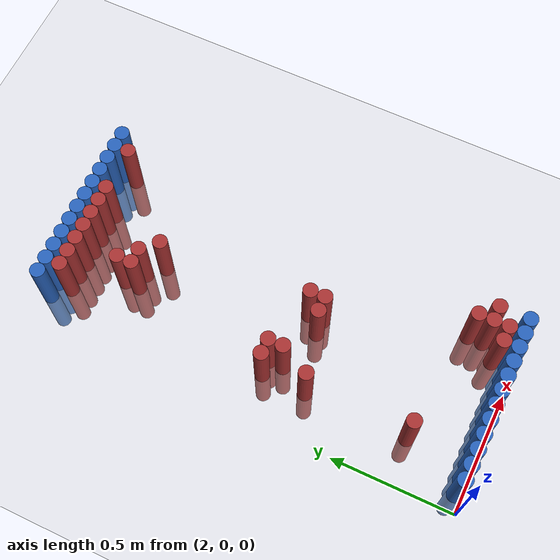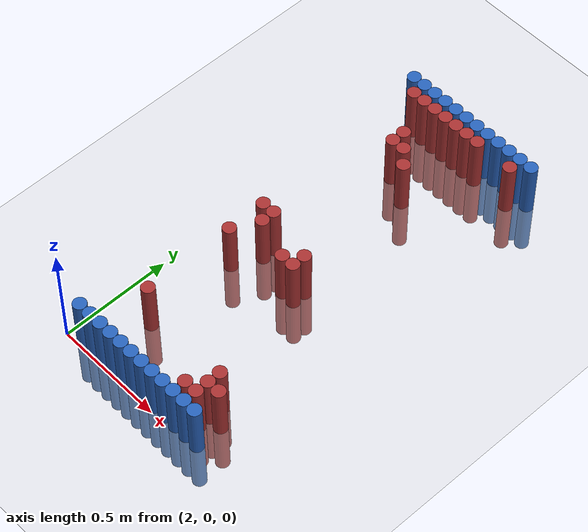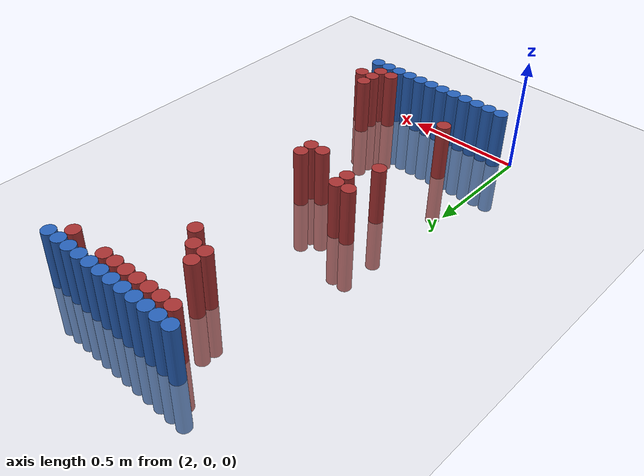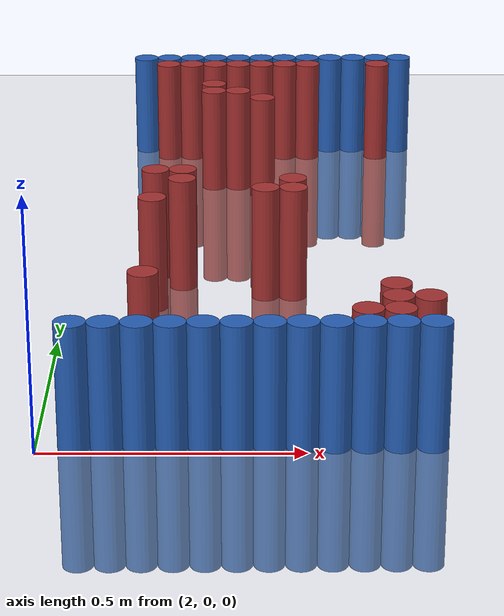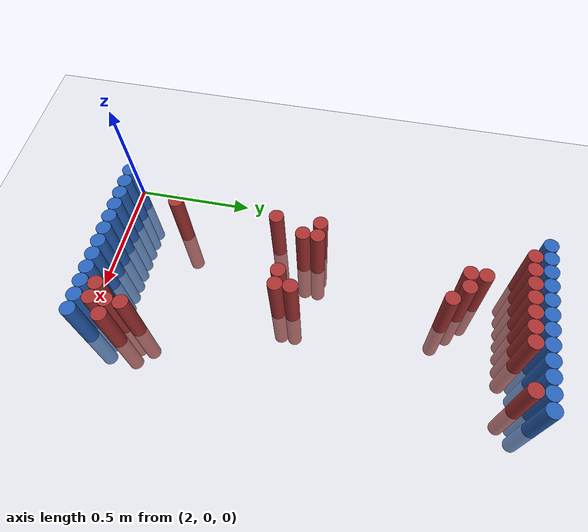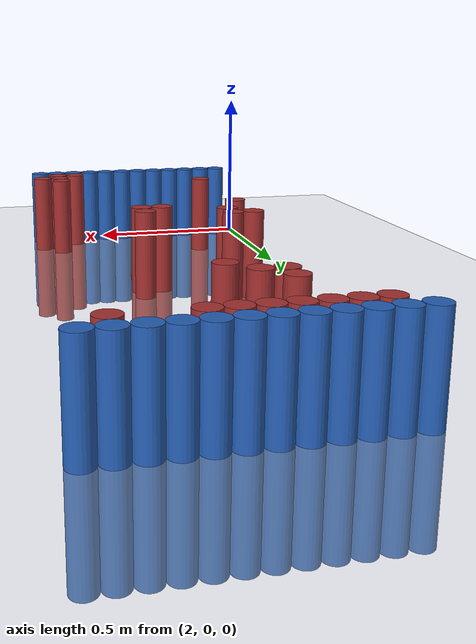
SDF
<sdf version="1.6">
 <world name="default">
  <model name="ground_plane">
   <static>1</static>
   <link name="link">
    <collision name="collision">
     <geometry><plane><normal>0 0 1</normal><size>100 100</size></plane></geometry>
     <surface><friction><ode><mu>100</mu><mu2>50</mu2></ode></friction></surface>
    </collision>
    <visual name="visual">
     <cast_shadows>0</cast_shadows>
     <geometry><plane><normal>0 0 1</normal><size>100 100</size></plane></geometry>
     <material>
      <script><uri>file://media/materials/scripts/gazebo.material</uri><name>Gazebo/Grey</name></script>
     </material>
    </visual>
   </link>
  </model>
  <model name="unit_cylinder_96">
   <static>1</static>
   <pose>2.130000 1.770000 0.000000 0.000000 0.000000 0.000000</pose>
   <link name="link">
    <inertial>
     <mass>1</mass>
     <inertia><ixx>0.145833</ixx><ixy>0</ixy><ixz>0</ixz><iyy>0.145833</iyy><iyz>0</iyz><izz>0.125</izz></inertia>
    </inertial>
    <collision name="collision">
     <geometry><cylinder><radius>0.030000</radius><length>0.5</length></cylinder></geometry>
    </collision>
    <visual name="visual">
     <geometry><cylinder><radius>0.030000</radius><length>0.5</length></cylinder></geometry>
     <material>
      <ambient>0.152000 0.379000 0.720000 1</ambient>
      <diffuse>0.152000 0.379000 0.720000 1</diffuse>
     </material>
     <material>
      <script><name>Gazebo/Grey</name><uri>file://media/materials/scripts/gazebo.material</uri></script>
     </material>
    </visual>
   </link>
  </model>
  <model name="unit_cylinder_97">
   <static>1</static>
   <pose>2.190000 1.770000 0.000000 0.000000 0.000000 0.000000</pose>
   <link name="link">
    <inertial>
     <mass>1</mass>
     <inertia><ixx>0.145833</ixx><ixy>0</ixy><ixz>0</ixz><iyy>0.145833</iyy><iyz>0</iyz><izz>0.125</izz></inertia>
    </inertial>
    <collision name="collision">
     <geometry><cylinder><radius>0.030000</radius><length>0.5</length></cylinder></geometry>
    </collision>
    <visual name="visual">
     <geometry><cylinder><radius>0.030000</radius><length>0.5</length></cylinder></geometry>
     <material>
      <ambient>0.152000 0.379000 0.720000 1</ambient>
      <diffuse>0.152000 0.379000 0.720000 1</diffuse>
     </material>
     <material>
      <script><name>Gazebo/Grey</name><uri>file://media/materials/scripts/gazebo.material</uri></script>
     </material>
    </visual>
   </link>
  </model>
  <model name="unit_cylinder_98">
   <static>1</static>
   <pose>2.250000 1.770000 0.000000 0.000000 0.000000 0.000000</pose>
   <link name="link">
    <inertial>
     <mass>1</mass>
     <inertia><ixx>0.145833</ixx><ixy>0</ixy><ixz>0</ixz><iyy>0.145833</iyy><iyz>0</iyz><izz>0.125</izz></inertia>
    </inertial>
    <collision name="collision">
     <geometry><cylinder><radius>0.030000</radius><length>0.5</length></cylinder></geometry>
    </collision>
    <visual name="visual">
     <geometry><cylinder><radius>0.030000</radius><length>0.5</length></cylinder></geometry>
     <material>
      <ambient>0.152000 0.379000 0.720000 1</ambient>
      <diffuse>0.152000 0.379000 0.720000 1</diffuse>
     </material>
     <material>
      <script><name>Gazebo/Grey</name><uri>file://media/materials/scripts/gazebo.material</uri></script>
     </material>
    </visual>
   </link>
  </model>
  <model name="unit_cylinder_99">
   <static>1</static>
   <pose>2.310000 1.770000 0.000000 0.000000 0.000000 0.000000</pose>
   <link name="link">
    <inertial>
     <mass>1</mass>
     <inertia><ixx>0.145833</ixx><ixy>0</ixy><ixz>0</ixz><iyy>0.145833</iyy><iyz>0</iyz><izz>0.125</izz></inertia>
    </inertial>
    <collision name="collision">
     <geometry><cylinder><radius>0.030000</radius><length>0.5</length></cylinder></geometry>
    </collision>
    <visual name="visual">
     <geometry><cylinder><radius>0.030000</radius><length>0.5</length></cylinder></geometry>
     <material>
      <ambient>0.152000 0.379000 0.720000 1</ambient>
      <diffuse>0.152000 0.379000 0.720000 1</diffuse>
     </material>
     <material>
      <script><name>Gazebo/Grey</name><uri>file://media/materials/scripts/gazebo.material</uri></script>
     </material>
    </visual>
   </link>
  </model>
  <model name="unit_cylinder_100">
   <static>1</static>
   <pose>2.370000 1.770000 0.000000 0.000000 0.000000 0.000000</pose>
   <link name="link">
    <inertial>
     <mass>1</mass>
     <inertia><ixx>0.145833</ixx><ixy>0</ixy><ixz>0</ixz><iyy>0.145833</iyy><iyz>0</iyz><izz>0.125</izz></inertia>
    </inertial>
    <collision name="collision">
     <geometry><cylinder><radius>0.030000</radius><length>0.5</length></cylinder></geometry>
    </collision>
    <visual name="visual">
     <geometry><cylinder><radius>0.030000</radius><length>0.5</length></cylinder></geometry>
     <material>
      <ambient>0.152000 0.379000 0.720000 1</ambient>
      <diffuse>0.152000 0.379000 0.720000 1</diffuse>
     </material>
     <material>
      <script><name>Gazebo/Grey</name><uri>file://media/materials/scripts/gazebo.material</uri></script>
     </material>
    </visual>
   </link>
  </model>
  <model name="unit_cylinder_101">
   <static>1</static>
   <pose>2.430000 1.770000 0.000000 0.000000 0.000000 0.000000</pose>
   <link name="link">
    <inertial>
     <mass>1</mass>
     <inertia><ixx>0.145833</ixx><ixy>0</ixy><ixz>0</ixz><iyy>0.145833</iyy><iyz>0</iyz><izz>0.125</izz></inertia>
    </inertial>
    <collision name="collision">
     <geometry><cylinder><radius>0.030000</radius><length>0.5</length></cylinder></geometry>
    </collision>
    <visual name="visual">
     <geometry><cylinder><radius>0.030000</radius><length>0.5</length></cylinder></geometry>
     <material>
      <ambient>0.152000 0.379000 0.720000 1</ambient>
      <diffuse>0.152000 0.379000 0.720000 1</diffuse>
     </material>
     <material>
      <script><name>Gazebo/Grey</name><uri>file://media/materials/scripts/gazebo.material</uri></script>
     </material>
    </visual>
   </link>
  </model>
  <model name="unit_cylinder_102">
   <static>1</static>
   <pose>2.490000 1.770000 0.000000 0.000000 0.000000 0.000000</pose>
   <link name="link">
    <inertial>
     <mass>1</mass>
     <inertia><ixx>0.145833</ixx><ixy>0</ixy><ixz>0</ixz><iyy>0.145833</iyy><iyz>0</iyz><izz>0.125</izz></inertia>
    </inertial>
    <collision name="collision">
     <geometry><cylinder><radius>0.030000</radius><length>0.5</length></cylinder></geometry>
    </collision>
    <visual name="visual">
     <geometry><cylinder><radius>0.030000</radius><length>0.5</length></cylinder></geometry>
     <material>
      <ambient>0.152000 0.379000 0.720000 1</ambient>
      <diffuse>0.152000 0.379000 0.720000 1</diffuse>
     </material>
     <material>
      <script><name>Gazebo/Grey</name><uri>file://media/materials/scripts/gazebo.material</uri></script>
     </material>
    </visual>
   </link>
  </model>
  <model name="unit_cylinder_103">
   <static>1</static>
   <pose>2.550000 1.770000 0.000000 0.000000 0.000000 0.000000</pose>
   <link name="link">
    <inertial>
     <mass>1</mass>
     <inertia><ixx>0.145833</ixx><ixy>0</ixy><ixz>0</ixz><iyy>0.145833</iyy><iyz>0</iyz><izz>0.125</izz></inertia>
    </inertial>
    <collision name="collision">
     <geometry><cylinder><radius>0.030000</radius><length>0.5</length></cylinder></geometry>
    </collision>
    <visual name="visual">
     <geometry><cylinder><radius>0.030000</radius><length>0.5</length></cylinder></geometry>
     <material>
      <ambient>0.152000 0.379000 0.720000 1</ambient>
      <diffuse>0.152000 0.379000 0.720000 1</diffuse>
     </material>
     <material>
      <script><name>Gazebo/Grey</name><uri>file://media/materials/scripts/gazebo.material</uri></script>
     </material>
    </visual>
   </link>
  </model>
  <model name="unit_cylinder_104">
   <static>1</static>
   <pose>2.610000 1.770000 0.000000 0.000000 0.000000 0.000000</pose>
   <link name="link">
    <inertial>
     <mass>1</mass>
     <inertia><ixx>0.145833</ixx><ixy>0</ixy><ixz>0</ixz><iyy>0.145833</iyy><iyz>0</iyz><izz>0.125</izz></inertia>
    </inertial>
    <collision name="collision">
     <geometry><cylinder><radius>0.030000</radius><length>0.5</length></cylinder></geometry>
    </collision>
    <visual name="visual">
     <geometry><cylinder><radius>0.030000</radius><length>0.5</length></cylinder></geometry>
     <material>
      <ambient>0.152000 0.379000 0.720000 1</ambient>
      <diffuse>0.152000 0.379000 0.720000 1</diffuse>
     </material>
     <material>
      <script><name>Gazebo/Grey</name><uri>file://media/materials/scripts/gazebo.material</uri></script>
     </material>
    </visual>
   </link>
  </model>
  <model name="unit_cylinder_105">
   <static>1</static>
   <pose>2.670000 1.770000 0.000000 0.000000 0.000000 0.000000</pose>
   <link name="link">
    <inertial>
     <mass>1</mass>
     <inertia><ixx>0.145833</ixx><ixy>0</ixy><ixz>0</ixz><iyy>0.145833</iyy><iyz>0</iyz><izz>0.125</izz></inertia>
    </inertial>
    <collision name="collision">
     <geometry><cylinder><radius>0.030000</radius><length>0.5</length></cylinder></geometry>
    </collision>
    <visual name="visual">
     <geometry><cylinder><radius>0.030000</radius><length>0.5</length></cylinder></geometry>
     <material>
      <ambient>0.152000 0.379000 0.720000 1</ambient>
      <diffuse>0.152000 0.379000 0.720000 1</diffuse>
     </material>
     <material>
      <script><name>Gazebo/Grey</name><uri>file://media/materials/scripts/gazebo.material</uri></script>
     </material>
    </visual>
   </link>
  </model>
  <model name="unit_cylinder_106">
   <static>1</static>
   <pose>2.730000 1.770000 0.000000 0.000000 0.000000 0.000000</pose>
   <link name="link">
    <inertial>
     <mass>1</mass>
     <inertia><ixx>0.145833</ixx><ixy>0</ixy><ixz>0</ixz><iyy>0.145833</iyy><iyz>0</iyz><izz>0.125</izz></inertia>
    </inertial>
    <collision name="collision">
     <geometry><cylinder><radius>0.030000</radius><length>0.5</length></cylinder></geometry>
    </collision>
    <visual name="visual">
     <geometry><cylinder><radius>0.030000</radius><length>0.5</length></cylinder></geometry>
     <material>
      <ambient>0.152000 0.379000 0.720000 1</ambient>
      <diffuse>0.152000 0.379000 0.720000 1</diffuse>
     </material>
     <material>
      <script><name>Gazebo/Grey</name><uri>file://media/materials/scripts/gazebo.material</uri></script>
     </material>
    </visual>
   </link>
  </model>
  <model name="unit_cylinder_107">
   <static>1</static>
   <pose>2.790000 1.770000 0.000000 0.000000 0.000000 0.000000</pose>
   <link name="link">
    <inertial>
     <mass>1</mass>
     <inertia><ixx>0.145833</ixx><ixy>0</ixy><ixz>0</ixz><iyy>0.145833</iyy><iyz>0</iyz><izz>0.125</izz></inertia>
    </inertial>
    <collision name="collision">
     <geometry><cylinder><radius>0.030000</radius><length>0.5</length></cylinder></geometry>
    </collision>
    <visual name="visual">
     <geometry><cylinder><radius>0.030000</radius><length>0.5</length></cylinder></geometry>
     <material>
      <ambient>0.152000 0.379000 0.720000 1</ambient>
      <diffuse>0.152000 0.379000 0.720000 1</diffuse>
     </material>
     <material>
      <script><name>Gazebo/Grey</name><uri>file://media/materials/scripts/gazebo.material</uri></script>
     </material>
    </visual>
   </link>
  </model>
  <model name="unit_cylinder_125">
   <static>1</static>
   <pose>2.190000 1.710000 0.000000 0.000000 0.000000 0.000000</pose>
   <link name="link">
    <inertial>
     <mass>1</mass>
     <inertia><ixx>0.145833</ixx><ixy>0</ixy><ixz>0</ixz><iyy>0.145833</iyy><iyz>0</iyz><izz>0.125</izz></inertia>
    </inertial>
    <collision name="collision">
     <geometry><cylinder><radius>0.030000</radius><length>0.5</length></cylinder></geometry>
    </collision>
    <visual name="visual">
     <geometry><cylinder><radius>0.030000</radius><length>0.5</length></cylinder></geometry>
     <material>
      <ambient>0.648000 0.192000 0.192000 1</ambient>
      <diffuse>0.648000 0.192000 0.192000 1</diffuse>
     </material>
     <material>
      <script><name>Gazebo/Grey</name><uri>file://media/materials/scripts/gazebo.material</uri></script>
     </material>
    </visual>
   </link>
  </model>
  <model name="unit_cylinder_126">
   <static>1</static>
   <pose>2.250000 1.710000 0.000000 0.000000 0.000000 0.000000</pose>
   <link name="link">
    <inertial>
     <mass>1</mass>
     <inertia><ixx>0.145833</ixx><ixy>0</ixy><ixz>0</ixz><iyy>0.145833</iyy><iyz>0</iyz><izz>0.125</izz></inertia>
    </inertial>
    <collision name="collision">
     <geometry><cylinder><radius>0.030000</radius><length>0.5</length></cylinder></geometry>
    </collision>
    <visual name="visual">
     <geometry><cylinder><radius>0.030000</radius><length>0.5</length></cylinder></geometry>
     <material>
      <ambient>0.648000 0.192000 0.192000 1</ambient>
      <diffuse>0.648000 0.192000 0.192000 1</diffuse>
     </material>
     <material>
      <script><name>Gazebo/Grey</name><uri>file://media/materials/scripts/gazebo.material</uri></script>
     </material>
    </visual>
   </link>
  </model>
  <model name="unit_cylinder_127">
   <static>1</static>
   <pose>2.310000 1.710000 0.000000 0.000000 0.000000 0.000000</pose>
   <link name="link">
    <inertial>
     <mass>1</mass>
     <inertia><ixx>0.145833</ixx><ixy>0</ixy><ixz>0</ixz><iyy>0.145833</iyy><iyz>0</iyz><izz>0.125</izz></inertia>
    </inertial>
    <collision name="collision">
     <geometry><cylinder><radius>0.030000</radius><length>0.5</length></cylinder></geometry>
    </collision>
    <visual name="visual">
     <geometry><cylinder><radius>0.030000</radius><length>0.5</length></cylinder></geometry>
     <material>
      <ambient>0.648000 0.192000 0.192000 1</ambient>
      <diffuse>0.648000 0.192000 0.192000 1</diffuse>
     </material>
     <material>
      <script><name>Gazebo/Grey</name><uri>file://media/materials/scripts/gazebo.material</uri></script>
     </material>
    </visual>
   </link>
  </model>
  <model name="unit_cylinder_128">
   <static>1</static>
   <pose>2.370000 1.710000 0.000000 0.000000 0.000000 0.000000</pose>
   <link name="link">
    <inertial>
     <mass>1</mass>
     <inertia><ixx>0.145833</ixx><ixy>0</ixy><ixz>0</ixz><iyy>0.145833</iyy><iyz>0</iyz><izz>0.125</izz></inertia>
    </inertial>
    <collision name="collision">
     <geometry><cylinder><radius>0.030000</radius><length>0.5</length></cylinder></geometry>
    </collision>
    <visual name="visual">
     <geometry><cylinder><radius>0.030000</radius><length>0.5</length></cylinder></geometry>
     <material>
      <ambient>0.648000 0.192000 0.192000 1</ambient>
      <diffuse>0.648000 0.192000 0.192000 1</diffuse>
     </material>
     <material>
      <script><name>Gazebo/Grey</name><uri>file://media/materials/scripts/gazebo.material</uri></script>
     </material>
    </visual>
   </link>
  </model>
  <model name="unit_cylinder_129">
   <static>1</static>
   <pose>2.430000 1.710000 0.000000 0.000000 0.000000 0.000000</pose>
   <link name="link">
    <inertial>
     <mass>1</mass>
     <inertia><ixx>0.145833</ixx><ixy>0</ixy><ixz>0</ixz><iyy>0.145833</iyy><iyz>0</iyz><izz>0.125</izz></inertia>
    </inertial>
    <collision name="collision">
     <geometry><cylinder><radius>0.030000</radius><length>0.5</length></cylinder></geometry>
    </collision>
    <visual name="visual">
     <geometry><cylinder><radius>0.030000</radius><length>0.5</length></cylinder></geometry>
     <material>
      <ambient>0.648000 0.192000 0.192000 1</ambient>
      <diffuse>0.648000 0.192000 0.192000 1</diffuse>
     </material>
     <material>
      <script><name>Gazebo/Grey</name><uri>file://media/materials/scripts/gazebo.material</uri></script>
     </material>
    </visual>
   </link>
  </model>
  <model name="unit_cylinder_130">
   <static>1</static>
   <pose>2.490000 1.710000 0.000000 0.000000 0.000000 0.000000</pose>
   <link name="link">
    <inertial>
     <mass>1</mass>
     <inertia><ixx>0.145833</ixx><ixy>0</ixy><ixz>0</ixz><iyy>0.145833</iyy><iyz>0</iyz><izz>0.125</izz></inertia>
    </inertial>
    <collision name="collision">
     <geometry><cylinder><radius>0.030000</radius><length>0.5</length></cylinder></geometry>
    </collision>
    <visual name="visual">
     <geometry><cylinder><radius>0.030000</radius><length>0.5</length></cylinder></geometry>
     <material>
      <ambient>0.648000 0.192000 0.192000 1</ambient>
      <diffuse>0.648000 0.192000 0.192000 1</diffuse>
     </material>
     <material>
      <script><name>Gazebo/Grey</name><uri>file://media/materials/scripts/gazebo.material</uri></script>
     </material>
    </visual>
   </link>
  </model>
  <model name="unit_cylinder_131">
   <static>1</static>
   <pose>2.550000 1.710000 0.000000 0.000000 0.000000 0.000000</pose>
   <link name="link">
    <inertial>
     <mass>1</mass>
     <inertia><ixx>0.145833</ixx><ixy>0</ixy><ixz>0</ixz><iyy>0.145833</iyy><iyz>0</iyz><izz>0.125</izz></inertia>
    </inertial>
    <collision name="collision">
     <geometry><cylinder><radius>0.030000</radius><length>0.5</length></cylinder></geometry>
    </collision>
    <visual name="visual">
     <geometry><cylinder><radius>0.030000</radius><length>0.5</length></cylinder></geometry>
     <material>
      <ambient>0.648000 0.192000 0.192000 1</ambient>
      <diffuse>0.648000 0.192000 0.192000 1</diffuse>
     </material>
     <material>
      <script><name>Gazebo/Grey</name><uri>file://media/materials/scripts/gazebo.material</uri></script>
     </material>
    </visual>
   </link>
  </model>
  <model name="unit_cylinder_132">
   <static>1</static>
   <pose>2.730000 1.710000 0.000000 0.000000 0.000000 0.000000</pose>
   <link name="link">
    <inertial>
     <mass>1</mass>
     <inertia><ixx>0.145833</ixx><ixy>0</ixy><ixz>0</ixz><iyy>0.145833</iyy><iyz>0</iyz><izz>0.125</izz></inertia>
    </inertial>
    <collision name="collision">
     <geometry><cylinder><radius>0.030000</radius><length>0.5</length></cylinder></geometry>
    </collision>
    <visual name="visual">
     <geometry><cylinder><radius>0.030000</radius><length>0.5</length></cylinder></geometry>
     <material>
      <ambient>0.648000 0.192000 0.192000 1</ambient>
      <diffuse>0.648000 0.192000 0.192000 1</diffuse>
     </material>
     <material>
      <script><name>Gazebo/Grey</name><uri>file://media/materials/scripts/gazebo.material</uri></script>
     </material>
    </visual>
   </link>
  </model>
  <model name="unit_cylinder_161">
   <static>1</static>
   <pose>2.310000 1.530000 0.000000 0.000000 0.000000 0.000000</pose>
   <link name="link">
    <inertial>
     <mass>1</mass>
     <inertia><ixx>0.145833</ixx><ixy>0</ixy><ixz>0</ixz><iyy>0.145833</iyy><iyz>0</iyz><izz>0.125</izz></inertia>
    </inertial>
    <collision name="collision">
     <geometry><cylinder><radius>0.030000</radius><length>0.5</length></cylinder></geometry>
    </collision>
    <visual name="visual">
     <geometry><cylinder><radius>0.030000</radius><length>0.5</length></cylinder></geometry>
     <material>
      <ambient>0.648000 0.192000 0.192000 1</ambient>
      <diffuse>0.648000 0.192000 0.192000 1</diffuse>
     </material>
     <material>
      <script><name>Gazebo/Grey</name><uri>file://media/materials/scripts/gazebo.material</uri></script>
     </material>
    </visual>
   </link>
  </model>
  <model name="unit_cylinder_168">
   <static>1</static>
   <pose>2.310000 1.470000 0.000000 0.000000 0.000000 0.000000</pose>
   <link name="link">
    <inertial>
     <mass>1</mass>
     <inertia><ixx>0.145833</ixx><ixy>0</ixy><ixz>0</ixz><iyy>0.145833</iyy><iyz>0</iyz><izz>0.125</izz></inertia>
    </inertial>
    <collision name="collision">
     <geometry><cylinder><radius>0.030000</radius><length>0.5</length></cylinder></geometry>
    </collision>
    <visual name="visual">
     <geometry><cylinder><radius>0.030000</radius><length>0.5</length></cylinder></geometry>
     <material>
      <ambient>0.648000 0.192000 0.192000 1</ambient>
      <diffuse>0.648000 0.192000 0.192000 1</diffuse>
     </material>
     <material>
      <script><name>Gazebo/Grey</name><uri>file://media/materials/scripts/gazebo.material</uri></script>
     </material>
    </visual>
   </link>
  </model>
  <model name="unit_cylinder_169">
   <static>1</static>
   <pose>2.370000 1.470000 0.000000 0.000000 0.000000 0.000000</pose>
   <link name="link">
    <inertial>
     <mass>1</mass>
     <inertia><ixx>0.145833</ixx><ixy>0</ixy><ixz>0</ixz><iyy>0.145833</iyy><iyz>0</iyz><izz>0.125</izz></inertia>
    </inertial>
    <collision name="collision">
     <geometry><cylinder><radius>0.030000</radius><length>0.5</length></cylinder></geometry>
    </collision>
    <visual name="visual">
     <geometry><cylinder><radius>0.030000</radius><length>0.5</length></cylinder></geometry>
     <material>
      <ambient>0.648000 0.192000 0.192000 1</ambient>
      <diffuse>0.648000 0.192000 0.192000 1</diffuse>
     </material>
     <material>
      <script><name>Gazebo/Grey</name><uri>file://media/materials/scripts/gazebo.material</uri></script>
     </material>
    </visual>
   </link>
  </model>
  <model name="unit_cylinder_178">
   <static>1</static>
   <pose>2.430000 1.410000 0.000000 0.000000 0.000000 0.000000</pose>
   <link name="link">
    <inertial>
     <mass>1</mass>
     <inertia><ixx>0.145833</ixx><ixy>0</ixy><ixz>0</ixz><iyy>0.145833</iyy><iyz>0</iyz><izz>0.125</izz></inertia>
    </inertial>
    <collision name="collision">
     <geometry><cylinder><radius>0.030000</radius><length>0.5</length></cylinder></geometry>
    </collision>
    <visual name="visual">
     <geometry><cylinder><radius>0.030000</radius><length>0.5</length></cylinder></geometry>
     <material>
      <ambient>0.648000 0.192000 0.192000 1</ambient>
      <diffuse>0.648000 0.192000 0.192000 1</diffuse>
     </material>
     <material>
      <script><name>Gazebo/Grey</name><uri>file://media/materials/scripts/gazebo.material</uri></script>
     </material>
    </visual>
   </link>
  </model>
  <model name="unit_cylinder_210">
   <static>1</static>
   <pose>2.190000 0.870000 0.000000 0.000000 0.000000 0.000000</pose>
   <link name="link">
    <inertial>
     <mass>1</mass>
     <inertia><ixx>0.145833</ixx><ixy>0</ixy><ixz>0</ixz><iyy>0.145833</iyy><iyz>0</iyz><izz>0.125</izz></inertia>
    </inertial>
    <collision name="collision">
     <geometry><cylinder><radius>0.030000</radius><length>0.5</length></cylinder></geometry>
    </collision>
    <visual name="visual">
     <geometry><cylinder><radius>0.030000</radius><length>0.5</length></cylinder></geometry>
     <material>
      <ambient>0.648000 0.192000 0.192000 1</ambient>
      <diffuse>0.648000 0.192000 0.192000 1</diffuse>
     </material>
     <material>
      <script><name>Gazebo/Grey</name><uri>file://media/materials/scripts/gazebo.material</uri></script>
     </material>
    </visual>
   </link>
  </model>
  <model name="unit_cylinder_211">
   <static>1</static>
   <pose>2.250000 0.870000 0.000000 0.000000 0.000000 0.000000</pose>
   <link name="link">
    <inertial>
     <mass>1</mass>
     <inertia><ixx>0.145833</ixx><ixy>0</ixy><ixz>0</ixz><iyy>0.145833</iyy><iyz>0</iyz><izz>0.125</izz></inertia>
    </inertial>
    <collision name="collision">
     <geometry><cylinder><radius>0.030000</radius><length>0.5</length></cylinder></geometry>
    </collision>
    <visual name="visual">
     <geometry><cylinder><radius>0.030000</radius><length>0.5</length></cylinder></geometry>
     <material>
      <ambient>0.648000 0.192000 0.192000 1</ambient>
      <diffuse>0.648000 0.192000 0.192000 1</diffuse>
     </material>
     <material>
      <script><name>Gazebo/Grey</name><uri>file://media/materials/scripts/gazebo.material</uri></script>
     </material>
    </visual>
   </link>
  </model>
  <model name="unit_cylinder_214">
   <static>1</static>
   <pose>2.250000 0.810000 0.000000 0.000000 0.000000 0.000000</pose>
   <link name="link">
    <inertial>
     <mass>1</mass>
     <inertia><ixx>0.145833</ixx><ixy>0</ixy><ixz>0</ixz><iyy>0.145833</iyy><iyz>0</iyz><izz>0.125</izz></inertia>
    </inertial>
    <collision name="collision">
     <geometry><cylinder><radius>0.030000</radius><length>0.5</length></cylinder></geometry>
    </collision>
    <visual name="visual">
     <geometry><cylinder><radius>0.030000</radius><length>0.5</length></cylinder></geometry>
     <material>
      <ambient>0.648000 0.192000 0.192000 1</ambient>
      <diffuse>0.648000 0.192000 0.192000 1</diffuse>
     </material>
     <material>
      <script><name>Gazebo/Grey</name><uri>file://media/materials/scripts/gazebo.material</uri></script>
     </material>
    </visual>
   </link>
  </model>
  <model name="unit_cylinder_215">
   <static>1</static>
   <pose>2.490000 0.810000 0.000000 0.000000 0.000000 0.000000</pose>
   <link name="link">
    <inertial>
     <mass>1</mass>
     <inertia><ixx>0.145833</ixx><ixy>0</ixy><ixz>0</ixz><iyy>0.145833</iyy><iyz>0</iyz><izz>0.125</izz></inertia>
    </inertial>
    <collision name="collision">
     <geometry><cylinder><radius>0.030000</radius><length>0.5</length></cylinder></geometry>
    </collision>
    <visual name="visual">
     <geometry><cylinder><radius>0.030000</radius><length>0.5</length></cylinder></geometry>
     <material>
      <ambient>0.648000 0.192000 0.192000 1</ambient>
      <diffuse>0.648000 0.192000 0.192000 1</diffuse>
     </material>
     <material>
      <script><name>Gazebo/Grey</name><uri>file://media/materials/scripts/gazebo.material</uri></script>
     </material>
    </visual>
   </link>
  </model>
  <model name="unit_cylinder_216">
   <static>1</static>
   <pose>2.430000 0.750000 0.000000 0.000000 0.000000 0.000000</pose>
   <link name="link">
    <inertial>
     <mass>1</mass>
     <inertia><ixx>0.145833</ixx><ixy>0</ixy><ixz>0</ixz><iyy>0.145833</iyy><iyz>0</iyz><izz>0.125</izz></inertia>
    </inertial>
    <collision name="collision">
     <geometry><cylinder><radius>0.030000</radius><length>0.5</length></cylinder></geometry>
    </collision>
    <visual name="visual">
     <geometry><cylinder><radius>0.030000</radius><length>0.5</length></cylinder></geometry>
     <material>
      <ambient>0.648000 0.192000 0.192000 1</ambient>
      <diffuse>0.648000 0.192000 0.192000 1</diffuse>
     </material>
     <material>
      <script><name>Gazebo/Grey</name><uri>file://media/materials/scripts/gazebo.material</uri></script>
     </material>
    </visual>
   </link>
  </model>
  <model name="unit_cylinder_217">
   <static>1</static>
   <pose>2.490000 0.750000 0.000000 0.000000 0.000000 0.000000</pose>
   <link name="link">
    <inertial>
     <mass>1</mass>
     <inertia><ixx>0.145833</ixx><ixy>0</ixy><ixz>0</ixz><iyy>0.145833</iyy><iyz>0</iyz><izz>0.125</izz></inertia>
    </inertial>
    <collision name="collision">
     <geometry><cylinder><radius>0.030000</radius><length>0.5</length></cylinder></geometry>
    </collision>
    <visual name="visual">
     <geometry><cylinder><radius>0.030000</radius><length>0.5</length></cylinder></geometry>
     <material>
      <ambient>0.648000 0.192000 0.192000 1</ambient>
      <diffuse>0.648000 0.192000 0.192000 1</diffuse>
     </material>
     <material>
      <script><name>Gazebo/Grey</name><uri>file://media/materials/scripts/gazebo.material</uri></script>
     </material>
    </visual>
   </link>
  </model>
  <model name="unit_cylinder_219">
   <static>1</static>
   <pose>2.190000 0.690000 0.000000 0.000000 0.000000 0.000000</pose>
   <link name="link">
    <inertial>
     <mass>1</mass>
     <inertia><ixx>0.145833</ixx><ixy>0</ixy><ixz>0</ixz><iyy>0.145833</iyy><iyz>0</iyz><izz>0.125</izz></inertia>
    </inertial>
    <collision name="collision">
     <geometry><cylinder><radius>0.030000</radius><length>0.5</length></cylinder></geometry>
    </collision>
    <visual name="visual">
     <geometry><cylinder><radius>0.030000</radius><length>0.5</length></cylinder></geometry>
     <material>
      <ambient>0.648000 0.192000 0.192000 1</ambient>
      <diffuse>0.648000 0.192000 0.192000 1</diffuse>
     </material>
     <material>
      <script><name>Gazebo/Grey</name><uri>file://media/materials/scripts/gazebo.material</uri></script>
     </material>
    </visual>
   </link>
  </model>
  <model name="unit_cylinder_224">
   <static>1</static>
   <pose>2.190000 0.270000 0.000000 0.000000 0.000000 0.000000</pose>
   <link name="link">
    <inertial>
     <mass>1</mass>
     <inertia><ixx>0.145833</ixx><ixy>0</ixy><ixz>0</ixz><iyy>0.145833</iyy><iyz>0</iyz><izz>0.125</izz></inertia>
    </inertial>
    <collision name="collision">
     <geometry><cylinder><radius>0.030000</radius><length>0.5</length></cylinder></geometry>
    </collision>
    <visual name="visual">
     <geometry><cylinder><radius>0.030000</radius><length>0.5</length></cylinder></geometry>
     <material>
      <ambient>0.648000 0.192000 0.192000 1</ambient>
      <diffuse>0.648000 0.192000 0.192000 1</diffuse>
     </material>
     <material>
      <script><name>Gazebo/Grey</name><uri>file://media/materials/scripts/gazebo.material</uri></script>
     </material>
    </visual>
   </link>
  </model>
  <model name="unit_cylinder_228">
   <static>1</static>
   <pose>2.670000 0.210000 0.000000 0.000000 0.000000 0.000000</pose>
   <link name="link">
    <inertial>
     <mass>1</mass>
     <inertia><ixx>0.145833</ixx><ixy>0</ixy><ixz>0</ixz><iyy>0.145833</iyy><iyz>0</iyz><izz>0.125</izz></inertia>
    </inertial>
    <collision name="collision">
     <geometry><cylinder><radius>0.030000</radius><length>0.5</length></cylinder></geometry>
    </collision>
    <visual name="visual">
     <geometry><cylinder><radius>0.030000</radius><length>0.5</length></cylinder></geometry>
     <material>
      <ambient>0.648000 0.192000 0.192000 1</ambient>
      <diffuse>0.648000 0.192000 0.192000 1</diffuse>
     </material>
     <material>
      <script><name>Gazebo/Grey</name><uri>file://media/materials/scripts/gazebo.material</uri></script>
     </material>
    </visual>
   </link>
  </model>
  <model name="unit_cylinder_235">
   <static>1</static>
   <pose>2.670000 0.150000 0.000000 0.000000 0.000000 0.000000</pose>
   <link name="link">
    <inertial>
     <mass>1</mass>
     <inertia><ixx>0.145833</ixx><ixy>0</ixy><ixz>0</ixz><iyy>0.145833</iyy><iyz>0</iyz><izz>0.125</izz></inertia>
    </inertial>
    <collision name="collision">
     <geometry><cylinder><radius>0.030000</radius><length>0.5</length></cylinder></geometry>
    </collision>
    <visual name="visual">
     <geometry><cylinder><radius>0.030000</radius><length>0.5</length></cylinder></geometry>
     <material>
      <ambient>0.648000 0.192000 0.192000 1</ambient>
      <diffuse>0.648000 0.192000 0.192000 1</diffuse>
     </material>
     <material>
      <script><name>Gazebo/Grey</name><uri>file://media/materials/scripts/gazebo.material</uri></script>
     </material>
    </visual>
   </link>
  </model>
  <model name="unit_cylinder_236">
   <static>1</static>
   <pose>2.730000 0.150000 0.000000 0.000000 0.000000 0.000000</pose>
   <link name="link">
    <inertial>
     <mass>1</mass>
     <inertia><ixx>0.145833</ixx><ixy>0</ixy><ixz>0</ixz><iyy>0.145833</iyy><iyz>0</iyz><izz>0.125</izz></inertia>
    </inertial>
    <collision name="collision">
     <geometry><cylinder><radius>0.030000</radius><length>0.5</length></cylinder></geometry>
    </collision>
    <visual name="visual">
     <geometry><cylinder><radius>0.030000</radius><length>0.5</length></cylinder></geometry>
     <material>
      <ambient>0.648000 0.192000 0.192000 1</ambient>
      <diffuse>0.648000 0.192000 0.192000 1</diffuse>
     </material>
     <material>
      <script><name>Gazebo/Grey</name><uri>file://media/materials/scripts/gazebo.material</uri></script>
     </material>
    </visual>
   </link>
  </model>
  <model name="unit_cylinder_251">
   <static>1</static>
   <pose>2.610000 0.090000 0.000000 0.000000 0.000000 0.000000</pose>
   <link name="link">
    <inertial>
     <mass>1</mass>
     <inertia><ixx>0.145833</ixx><ixy>0</ixy><ixz>0</ixz><iyy>0.145833</iyy><iyz>0</iyz><izz>0.125</izz></inertia>
    </inertial>
    <collision name="collision">
     <geometry><cylinder><radius>0.030000</radius><length>0.5</length></cylinder></geometry>
    </collision>
    <visual name="visual">
     <geometry><cylinder><radius>0.030000</radius><length>0.5</length></cylinder></geometry>
     <material>
      <ambient>0.648000 0.192000 0.192000 1</ambient>
      <diffuse>0.648000 0.192000 0.192000 1</diffuse>
     </material>
     <material>
      <script><name>Gazebo/Grey</name><uri>file://media/materials/scripts/gazebo.material</uri></script>
     </material>
    </visual>
   </link>
  </model>
  <model name="unit_cylinder_252">
   <static>1</static>
   <pose>2.670000 0.090000 0.000000 0.000000 0.000000 0.000000</pose>
   <link name="link">
    <inertial>
     <mass>1</mass>
     <inertia><ixx>0.145833</ixx><ixy>0</ixy><ixz>0</ixz><iyy>0.145833</iyy><iyz>0</iyz><izz>0.125</izz></inertia>
    </inertial>
    <collision name="collision">
     <geometry><cylinder><radius>0.030000</radius><length>0.5</length></cylinder></geometry>
    </collision>
    <visual name="visual">
     <geometry><cylinder><radius>0.030000</radius><length>0.5</length></cylinder></geometry>
     <material>
      <ambient>0.648000 0.192000 0.192000 1</ambient>
      <diffuse>0.648000 0.192000 0.192000 1</diffuse>
     </material>
     <material>
      <script><name>Gazebo/Grey</name><uri>file://media/materials/scripts/gazebo.material</uri></script>
     </material>
    </visual>
   </link>
  </model>
  <model name="unit_cylinder_260">
   <static>1</static>
   <pose>2.070000 0.030000 0.000000 0.000000 0.000000 0.000000</pose>
   <link name="link">
    <inertial>
     <mass>1</mass>
     <inertia><ixx>0.145833</ixx><ixy>0</ixy><ixz>0</ixz><iyy>0.145833</iyy><iyz>0</iyz><izz>0.125</izz></inertia>
    </inertial>
    <collision name="collision">
     <geometry><cylinder><radius>0.030000</radius><length>0.5</length></cylinder></geometry>
    </collision>
    <visual name="visual">
     <geometry><cylinder><radius>0.030000</radius><length>0.5</length></cylinder></geometry>
     <material>
      <ambient>0.152000 0.379000 0.720000 1</ambient>
      <diffuse>0.152000 0.379000 0.720000 1</diffuse>
     </material>
     <material>
      <script><name>Gazebo/Grey</name><uri>file://media/materials/scripts/gazebo.material</uri></script>
     </material>
    </visual>
   </link>
  </model>
  <model name="unit_cylinder_261">
   <static>1</static>
   <pose>2.130000 0.030000 0.000000 0.000000 0.000000 0.000000</pose>
   <link name="link">
    <inertial>
     <mass>1</mass>
     <inertia><ixx>0.145833</ixx><ixy>0</ixy><ixz>0</ixz><iyy>0.145833</iyy><iyz>0</iyz><izz>0.125</izz></inertia>
    </inertial>
    <collision name="collision">
     <geometry><cylinder><radius>0.030000</radius><length>0.5</length></cylinder></geometry>
    </collision>
    <visual name="visual">
     <geometry><cylinder><radius>0.030000</radius><length>0.5</length></cylinder></geometry>
     <material>
      <ambient>0.152000 0.379000 0.720000 1</ambient>
      <diffuse>0.152000 0.379000 0.720000 1</diffuse>
     </material>
     <material>
      <script><name>Gazebo/Grey</name><uri>file://media/materials/scripts/gazebo.material</uri></script>
     </material>
    </visual>
   </link>
  </model>
  <model name="unit_cylinder_262">
   <static>1</static>
   <pose>2.190000 0.030000 0.000000 0.000000 0.000000 0.000000</pose>
   <link name="link">
    <inertial>
     <mass>1</mass>
     <inertia><ixx>0.145833</ixx><ixy>0</ixy><ixz>0</ixz><iyy>0.145833</iyy><iyz>0</iyz><izz>0.125</izz></inertia>
    </inertial>
    <collision name="collision">
     <geometry><cylinder><radius>0.030000</radius><length>0.5</length></cylinder></geometry>
    </collision>
    <visual name="visual">
     <geometry><cylinder><radius>0.030000</radius><length>0.5</length></cylinder></geometry>
     <material>
      <ambient>0.152000 0.379000 0.720000 1</ambient>
      <diffuse>0.152000 0.379000 0.720000 1</diffuse>
     </material>
     <material>
      <script><name>Gazebo/Grey</name><uri>file://media/materials/scripts/gazebo.material</uri></script>
     </material>
    </visual>
   </link>
  </model>
  <model name="unit_cylinder_263">
   <static>1</static>
   <pose>2.250000 0.030000 0.000000 0.000000 0.000000 0.000000</pose>
   <link name="link">
    <inertial>
     <mass>1</mass>
     <inertia><ixx>0.145833</ixx><ixy>0</ixy><ixz>0</ixz><iyy>0.145833</iyy><iyz>0</iyz><izz>0.125</izz></inertia>
    </inertial>
    <collision name="collision">
     <geometry><cylinder><radius>0.030000</radius><length>0.5</length></cylinder></geometry>
    </collision>
    <visual name="visual">
     <geometry><cylinder><radius>0.030000</radius><length>0.5</length></cylinder></geometry>
     <material>
      <ambient>0.152000 0.379000 0.720000 1</ambient>
      <diffuse>0.152000 0.379000 0.720000 1</diffuse>
     </material>
     <material>
      <script><name>Gazebo/Grey</name><uri>file://media/materials/scripts/gazebo.material</uri></script>
     </material>
    </visual>
   </link>
  </model>
  <model name="unit_cylinder_264">
   <static>1</static>
   <pose>2.310000 0.030000 0.000000 0.000000 0.000000 0.000000</pose>
   <link name="link">
    <inertial>
     <mass>1</mass>
     <inertia><ixx>0.145833</ixx><ixy>0</ixy><ixz>0</ixz><iyy>0.145833</iyy><iyz>0</iyz><izz>0.125</izz></inertia>
    </inertial>
    <collision name="collision">
     <geometry><cylinder><radius>0.030000</radius><length>0.5</length></cylinder></geometry>
    </collision>
    <visual name="visual">
     <geometry><cylinder><radius>0.030000</radius><length>0.5</length></cylinder></geometry>
     <material>
      <ambient>0.152000 0.379000 0.720000 1</ambient>
      <diffuse>0.152000 0.379000 0.720000 1</diffuse>
     </material>
     <material>
      <script><name>Gazebo/Grey</name><uri>file://media/materials/scripts/gazebo.material</uri></script>
     </material>
    </visual>
   </link>
  </model>
  <model name="unit_cylinder_265">
   <static>1</static>
   <pose>2.370000 0.030000 0.000000 0.000000 0.000000 0.000000</pose>
   <link name="link">
    <inertial>
     <mass>1</mass>
     <inertia><ixx>0.145833</ixx><ixy>0</ixy><ixz>0</ixz><iyy>0.145833</iyy><iyz>0</iyz><izz>0.125</izz></inertia>
    </inertial>
    <collision name="collision">
     <geometry><cylinder><radius>0.030000</radius><length>0.5</length></cylinder></geometry>
    </collision>
    <visual name="visual">
     <geometry><cylinder><radius>0.030000</radius><length>0.5</length></cylinder></geometry>
     <material>
      <ambient>0.152000 0.379000 0.720000 1</ambient>
      <diffuse>0.152000 0.379000 0.720000 1</diffuse>
     </material>
     <material>
      <script><name>Gazebo/Grey</name><uri>file://media/materials/scripts/gazebo.material</uri></script>
     </material>
    </visual>
   </link>
  </model>
  <model name="unit_cylinder_266">
   <static>1</static>
   <pose>2.430000 0.030000 0.000000 0.000000 0.000000 0.000000</pose>
   <link name="link">
    <inertial>
     <mass>1</mass>
     <inertia><ixx>0.145833</ixx><ixy>0</ixy><ixz>0</ixz><iyy>0.145833</iyy><iyz>0</iyz><izz>0.125</izz></inertia>
    </inertial>
    <collision name="collision">
     <geometry><cylinder><radius>0.030000</radius><length>0.5</length></cylinder></geometry>
    </collision>
    <visual name="visual">
     <geometry><cylinder><radius>0.030000</radius><length>0.5</length></cylinder></geometry>
     <material>
      <ambient>0.152000 0.379000 0.720000 1</ambient>
      <diffuse>0.152000 0.379000 0.720000 1</diffuse>
     </material>
     <material>
      <script><name>Gazebo/Grey</name><uri>file://media/materials/scripts/gazebo.material</uri></script>
     </material>
    </visual>
   </link>
  </model>
  <model name="unit_cylinder_267">
   <static>1</static>
   <pose>2.490000 0.030000 0.000000 0.000000 0.000000 0.000000</pose>
   <link name="link">
    <inertial>
     <mass>1</mass>
     <inertia><ixx>0.145833</ixx><ixy>0</ixy><ixz>0</ixz><iyy>0.145833</iyy><iyz>0</iyz><izz>0.125</izz></inertia>
    </inertial>
    <collision name="collision">
     <geometry><cylinder><radius>0.030000</radius><length>0.5</length></cylinder></geometry>
    </collision>
    <visual name="visual">
     <geometry><cylinder><radius>0.030000</radius><length>0.5</length></cylinder></geometry>
     <material>
      <ambient>0.152000 0.379000 0.720000 1</ambient>
      <diffuse>0.152000 0.379000 0.720000 1</diffuse>
     </material>
     <material>
      <script><name>Gazebo/Grey</name><uri>file://media/materials/scripts/gazebo.material</uri></script>
     </material>
    </visual>
   </link>
  </model>
  <model name="unit_cylinder_268">
   <static>1</static>
   <pose>2.550000 0.030000 0.000000 0.000000 0.000000 0.000000</pose>
   <link name="link">
    <inertial>
     <mass>1</mass>
     <inertia><ixx>0.145833</ixx><ixy>0</ixy><ixz>0</ixz><iyy>0.145833</iyy><iyz>0</iyz><izz>0.125</izz></inertia>
    </inertial>
    <collision name="collision">
     <geometry><cylinder><radius>0.030000</radius><length>0.5</length></cylinder></geometry>
    </collision>
    <visual name="visual">
     <geometry><cylinder><radius>0.030000</radius><length>0.5</length></cylinder></geometry>
     <material>
      <ambient>0.152000 0.379000 0.720000 1</ambient>
      <diffuse>0.152000 0.379000 0.720000 1</diffuse>
     </material>
     <material>
      <script><name>Gazebo/Grey</name><uri>file://media/materials/scripts/gazebo.material</uri></script>
     </material>
    </visual>
   </link>
  </model>
  <model name="unit_cylinder_269">
   <static>1</static>
   <pose>2.610000 0.030000 0.000000 0.000000 0.000000 0.000000</pose>
   <link name="link">
    <inertial>
     <mass>1</mass>
     <inertia><ixx>0.145833</ixx><ixy>0</ixy><ixz>0</ixz><iyy>0.145833</iyy><iyz>0</iyz><izz>0.125</izz></inertia>
    </inertial>
    <collision name="collision">
     <geometry><cylinder><radius>0.030000</radius><length>0.5</length></cylinder></geometry>
    </collision>
    <visual name="visual">
     <geometry><cylinder><radius>0.030000</radius><length>0.5</length></cylinder></geometry>
     <material>
      <ambient>0.152000 0.379000 0.720000 1</ambient>
      <diffuse>0.152000 0.379000 0.720000 1</diffuse>
     </material>
     <material>
      <script><name>Gazebo/Grey</name><uri>file://media/materials/scripts/gazebo.material</uri></script>
     </material>
    </visual>
   </link>
  </model>
  <model name="unit_cylinder_270">
   <static>1</static>
   <pose>2.670000 0.030000 0.000000 0.000000 0.000000 0.000000</pose>
   <link name="link">
    <inertial>
     <mass>1</mass>
     <inertia><ixx>0.145833</ixx><ixy>0</ixy><ixz>0</ixz><iyy>0.145833</iyy><iyz>0</iyz><izz>0.125</izz></inertia>
    </inertial>
    <collision name="collision">
     <geometry><cylinder><radius>0.030000</radius><length>0.5</length></cylinder></geometry>
    </collision>
    <visual name="visual">
     <geometry><cylinder><radius>0.030000</radius><length>0.5</length></cylinder></geometry>
     <material>
      <ambient>0.152000 0.379000 0.720000 1</ambient>
      <diffuse>0.152000 0.379000 0.720000 1</diffuse>
     </material>
     <material>
      <script><name>Gazebo/Grey</name><uri>file://media/materials/scripts/gazebo.material</uri></script>
     </material>
    </visual>
   </link>
  </model>
  <model name="unit_cylinder_271">
   <static>1</static>
   <pose>2.730000 0.030000 0.000000 0.000000 0.000000 0.000000</pose>
   <link name="link">
    <inertial>
     <mass>1</mass>
     <inertia><ixx>0.145833</ixx><ixy>0</ixy><ixz>0</ixz><iyy>0.145833</iyy><iyz>0</iyz><izz>0.125</izz></inertia>
    </inertial>
    <collision name="collision">
     <geometry><cylinder><radius>0.030000</radius><length>0.5</length></cylinder></geometry>
    </collision>
    <visual name="visual">
     <geometry><cylinder><radius>0.030000</radius><length>0.5</length></cylinder></geometry>
     <material>
      <ambient>0.152000 0.379000 0.720000 1</ambient>
      <diffuse>0.152000 0.379000 0.720000 1</diffuse>
     </material>
     <material>
      <script><name>Gazebo/Grey</name><uri>file://media/materials/scripts/gazebo.material</uri></script>
     </material>
    </visual>
   </link>
  </model>
 </world>
</sdf>
